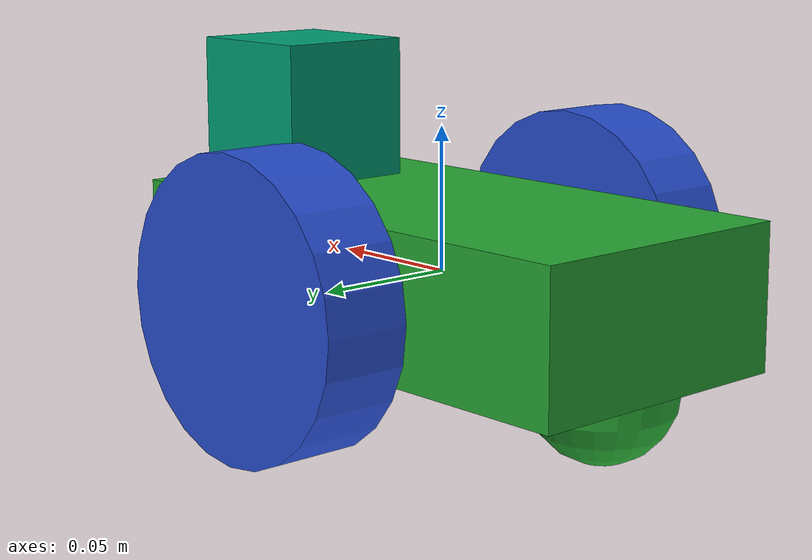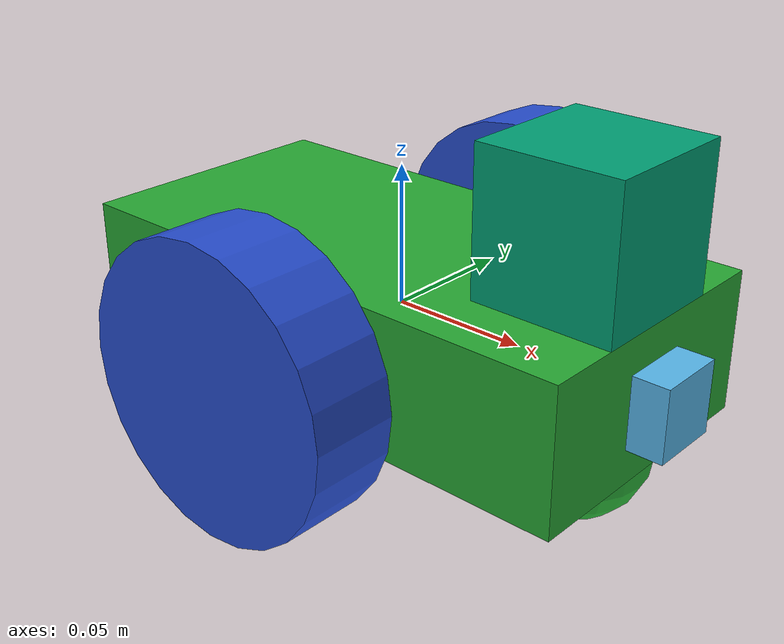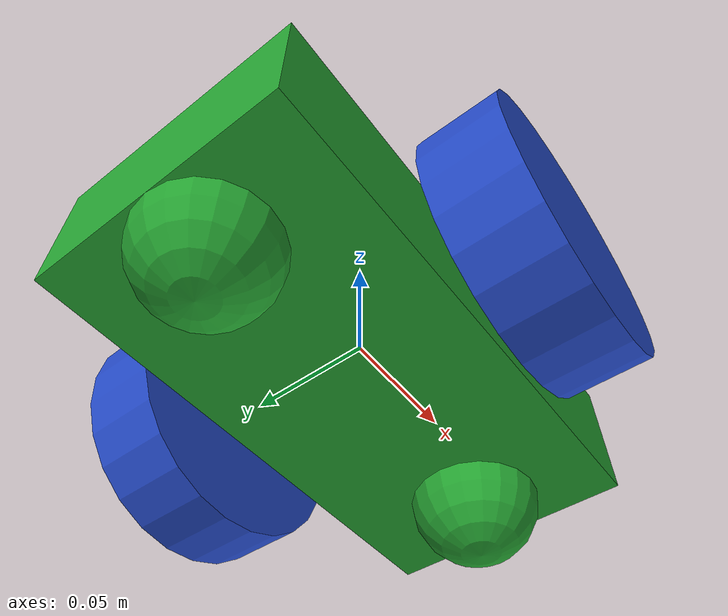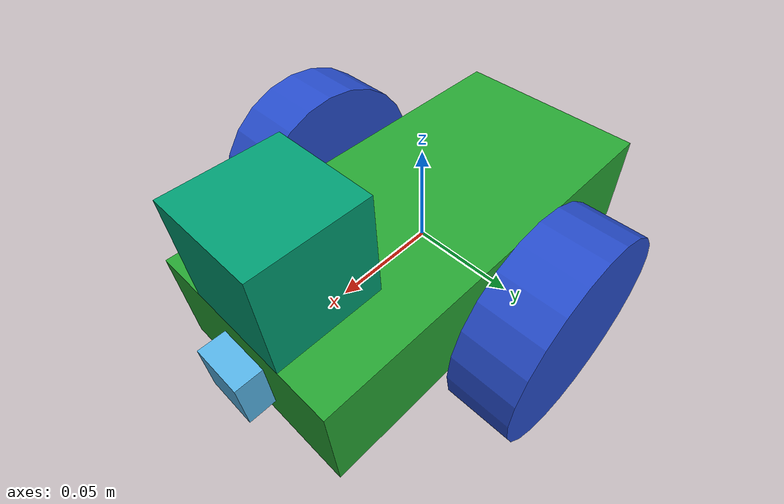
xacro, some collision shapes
<?xml version='1.0'?>

<robot name="my_robot" xmlns:xacro="http://www.ros.org/wiki/xacro">

  <xacro:include filename="$(find my_robot)/urdf/my_robot.gazebo" />

  <link name="robot_footprint"></link>

  <joint name="robot_footprint_joint" type="fixed">
    <origin xyz="0 0 0" rpy="0 0 0" />
    <parent link="robot_footprint"/>
    <child link="chassis" />
  </joint>

  <gazebo reference="chassis">
    <material>Gazebo/Green</material>
  </gazebo>

  <gazebo reference="left_wheel">
    <material>Gazebo/Blue</material>
  </gazebo>

  <gazebo reference="right_wheel">
    <material>Gazebo/Blue</material>
  </gazebo>

  <link name='camera'>
    <pose>0 0 0 0 0 0</pose>

    <inertial>
      <mass value=".1"/>
      <origin xyz=".05 0.05 0.05" rpy=" 0 0 0"/>
      <inertia
              ixx="1e-6" ixy="0" ixz="0"
              iyy="1e-6" iyz="0"
              izz="1e-6"
      />
    </inertial>

    <collision name='collision'>
      <origin xyz="0 0 0" rpy=" 0 0 0"/>
      <geometry>
        <box size=".025 .025 .025"/>
      </geometry>
    </collision>

    <visual name='visual'>
      <origin xyz="0 0 0" rpy=" 0 0 0"/>
      <geometry>
        <box size=".025 .025 .025"/>
      </geometry>
    </visual>
  </link>

  <link name='hokuyo'>
    <pose>0 0 0 0 0 0</pose>

    <inertial>
      <mass value="1e-5"/>
      <origin xyz=".0 .0 .0" rpy=" 0 0 0"/>
      <inertia
              ixx="1e-6" ixy="0" ixz="0"
              iyy="1e-6" iyz="0"
              izz="1e-6"
      />
    </inertial>

    <collision name='collision'>
      <origin xyz="0 0 0" rpy=" 0 0 0"/>
      <geometry>
        <box size=".05 .05 .05"/>
      </geometry>
    </collision>

    <visual name='visual'>
      <origin xyz="0 0 0" rpy=" 0 0 0"/>
      <geometry>
        <mesh filename="package://my_robot/meshes/hokuyo.dae"/>
      </geometry>
    </visual>
  </link>

  <link name='left_wheel'>
    <pose>0 0 0 0 0 0</pose>

    <inertial>
      <mass value="2.0"/>
      <origin xyz="0.0 0 0" rpy=" 0 0 0"/>
      <inertia
              ixx="0.1" ixy="0" ixz="0"
              iyy="0.1" iyz="0"
              izz="0.1"
      />
    </inertial>

    <collision name='collision'>
      <origin xyz="0 0 0" rpy=" 0 1.5707 1.5707"/>
      <geometry>
        <cylinder radius=".05" length=".03"/>
      </geometry>
    </collision>

    <visual name='visual'>
      <origin xyz="0 0 0" rpy=" 0 1.5707 1.5707"/>
      <geometry>
        <cylinder radius=".05" length=".03"/>
      </geometry>
    </visual>
  </link>

  <link name='right_wheel'>
    <pose>0 0 0 0 0 0</pose>

    <inertial>
      <mass value="2.0"/>
      <origin xyz="0.0 0 0" rpy=" 0 0 0"/>
      <inertia
              ixx="0.1" ixy="0" ixz="0"
              iyy="0.1" iyz="0"
              izz="0.1"
      />
    </inertial>

    <collision name='collision'>
      <origin xyz="0 0 0" rpy=" 0 1.5707 1.5707"/>
      <geometry>
        <cylinder radius=".05" length=".03"/>
      </geometry>
    </collision>

    <visual name='visual'>
      <origin xyz="0 0 0" rpy=" 0 1.5707 1.5707"/>
      <geometry>
        <cylinder radius=".05" length=".03"/>
      </geometry>
    </visual>
  </link>

  <link name='chassis'>
    <pose>0 0 0.1 0 0 0</pose>

    <inertial>
      <mass value="15.0"/>
      <origin xyz="0.0 0 0" rpy=" 0 0 0"/>
      <inertia
          ixx="0.1" ixy="0" ixz="0"
          iyy="0.1" iyz="0"
          izz="0.1"
      />
    </inertial>

    <collision name='collision'>
      <origin xyz="0 0 0" rpy=" 0 0 0"/>
      <geometry>
        <box size=".2 .1 .05"/>
      </geometry>
    </collision>

    <visual name='chassis_visual'>
      <origin xyz="0 0 0" rpy=" 0 0 0"/>
      <geometry>
        <box size=".2 .1 .05"/>
      </geometry>
    </visual>

    <collision name='back_caster_collision'>
      <origin xyz="-0.075 0 -0.025" rpy=" 0 0 0"/>
      <geometry>
        <sphere radius="0.02499"/>
      </geometry>
    </collision>

    <visual name='back_caster_visual'>
      <origin xyz="-0.075 0 -0.025" rpy=" 0 0 0"/>
      <geometry>
        <sphere radius="0.025"/>
      </geometry>
    </visual>

    <collision name='front_caster_collision'>
      <origin xyz="0.075 0 -0.025" rpy=" 0 0 0"/>
      <geometry>
        <sphere radius="0.02499"/>
      </geometry>
    </collision>

    <visual name='front_caster_visual'>
      <origin xyz="0.075 0 -0.025" rpy=" 0 0 0"/>
      <geometry>
        <sphere radius="0.025"/>
      </geometry>
    </visual>

  </link>

  <joint type="continuous" name="left_wheel_hinge">
    <origin xyz="0.0 0.075 0.0" rpy="0 0 0"/>
    <child link="left_wheel"/>
    <parent link="chassis"/>
    <axis xyz="0 1 0" rpy="0 0 0"/>
    <limit effort="10000" velocity="1000"/>
    <dynamics damping="1.0" friction="1.0"/>
  </joint>

  <joint type="continuous" name="right_wheel_hinge">
    <origin xyz="0.0 -0.0749 0.0" rpy="0 0 0"/>
    <child link="right_wheel"/>
    <parent link="chassis"/>
    <axis xyz="0 1 0" rpy="0 0 0"/>
    <limit effort="10000" velocity="1000"/>
    <dynamics damping="1.0" friction="1.0"/>
  </joint>

  <joint type="fixed" name="camera_joint">
    <origin xyz=".1 0 0" rpy="0 0 0"/>
    <child link="camera"/>
    <parent link="chassis"/>
    <axis xyz="0 1 0" rpy="0 0 0"/>
  </joint>

  <joint name="camera_optical_joint" type="fixed">
    <origin xyz="0 0 0" rpy="-1.5707 0 -1.5707"/>
    <parent link="camera"/>
    <child link="camera_link_optical"/>
  </joint>

  <link name="camera_link_optical"/>

  <joint type="fixed" name="hokuyo_joint">
    <origin xyz=".075 0 .05" rpy="0 0 0"/>
    <child link="hokuyo"/>
    <parent link="chassis"/>
    <axis xyz="0 1 0" rpy="0 0 0"/>
  </joint>

</robot>
